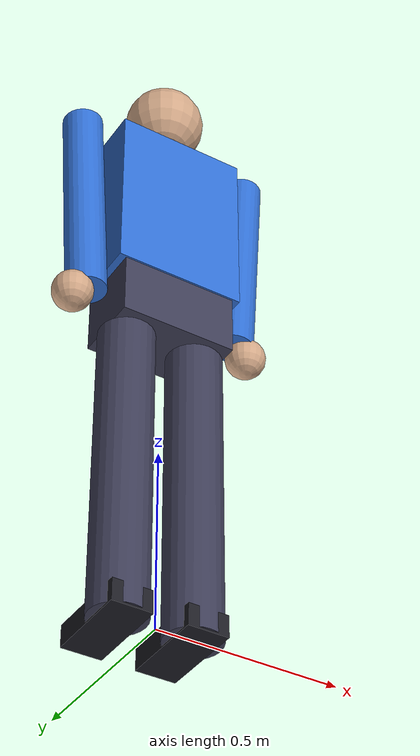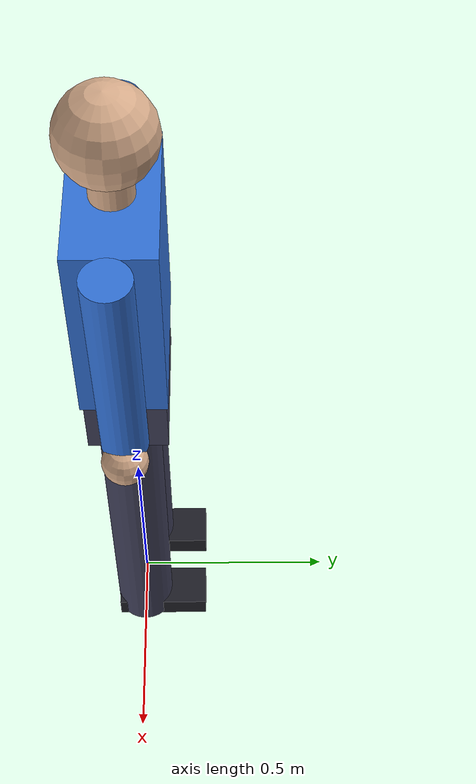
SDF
<?xml version="1.0"?>
<sdf version="1.9">
  <model name="human_figure">
    <static>true</static>
    <link name="body">
      <pose>0 0 0.875 0 0 0</pose>

      <inertial>
        <mass>70.0</mass>
        <inertia>
          <ixx>18.0</ixx><ixy>0</ixy><ixz>0</ixz>
          <iyy>18.0</iyy><iyz>0</iyz>
          <izz>2.2</izz>
        </inertia>
      </inertial>

      <!-- Коллизия: тот же цилиндр, что и раньше.
           Датчики видят простую форму, алгоритмы не меняются. -->

      <!-- Визуальное представление: силуэт человека из примитивов -->

      <visual name="head">
        <pose>0 0 0.79 0 0 0</pose>
        <geometry>
          <sphere><radius>0.11</radius></sphere>
        </geometry>
        <material>
          <ambient>0.85 0.68 0.55 1</ambient>
          <diffuse>0.85 0.68 0.55 1</diffuse>
        </material>
      </visual>

      <visual name="neck">
        <pose>0 0 0.66 0 0 0</pose>
        <geometry>
          <cylinder><radius>0.05</radius><length>0.09</length></cylinder>
        </geometry>
        <material>
          <ambient>0.85 0.68 0.55 1</ambient>
          <diffuse>0.85 0.68 0.55 1</diffuse>
        </material>
      </visual>

      <visual name="torso">
        <pose>0 0 0.38 0 0 0</pose>
        <geometry>
          <box><size>0.36 0.20 0.50</size></box>
        </geometry>
        <material>
          <ambient>0.15 0.35 0.70 1</ambient>
          <diffuse>0.20 0.45 0.85 1</diffuse>
        </material>
      </visual>

      <visual name="hips">
        <pose>0 0 0.06 0 0 0</pose>
        <geometry>
          <box><size>0.32 0.19 0.20</size></box>
        </geometry>
        <material>
          <ambient>0.20 0.20 0.28 1</ambient>
          <diffuse>0.25 0.25 0.35 1</diffuse>
        </material>
      </visual>

      <visual name="arm_left">
        <pose>0.24 0 0.36 0 0.06 0</pose>
        <geometry>
          <cylinder><radius>0.055</radius><length>0.60</length></cylinder>
        </geometry>
        <material>
          <ambient>0.15 0.35 0.70 1</ambient>
          <diffuse>0.20 0.45 0.85 1</diffuse>
        </material>
      </visual>

      <visual name="arm_right">
        <pose>-0.24 0 0.36 0 -0.06 0</pose>
        <geometry>
          <cylinder><radius>0.055</radius><length>0.60</length></cylinder>
        </geometry>
        <material>
          <ambient>0.15 0.35 0.70 1</ambient>
          <diffuse>0.20 0.45 0.85 1</diffuse>
        </material>
      </visual>

      <visual name="hand_left">
        <pose>0.26 0 0.04 0 0 0</pose>
        <geometry>
          <sphere><radius>0.055</radius></sphere>
        </geometry>
        <material>
          <ambient>0.85 0.68 0.55 1</ambient>
          <diffuse>0.85 0.68 0.55 1</diffuse>
        </material>
      </visual>

      <visual name="hand_right">
        <pose>-0.26 0 0.04 0 0 0</pose>
        <geometry>
          <sphere><radius>0.055</radius></sphere>
        </geometry>
        <material>
          <ambient>0.85 0.68 0.55 1</ambient>
          <diffuse>0.85 0.68 0.55 1</diffuse>
        </material>
      </visual>

      <visual name="leg_left">
        <pose>0.10 0 -0.46 0 0 0</pose>
        <geometry>
          <cylinder><radius>0.075</radius><length>0.84</length></cylinder>
        </geometry>
        <material>
          <ambient>0.20 0.20 0.28 1</ambient>
          <diffuse>0.25 0.25 0.35 1</diffuse>
        </material>
      </visual>

      <visual name="leg_right">
        <pose>-0.10 0 -0.46 0 0 0</pose>
        <geometry>
          <cylinder><radius>0.075</radius><length>0.84</length></cylinder>
        </geometry>
        <material>
          <ambient>0.20 0.20 0.28 1</ambient>
          <diffuse>0.25 0.25 0.35 1</diffuse>
        </material>
      </visual>

      <visual name="foot_left">
        <pose>0.10 0.05 -0.855 0 0 0</pose>
        <geometry>
          <box><size>0.11 0.24 0.06</size></box>
        </geometry>
        <material>
          <ambient>0.10 0.10 0.12 1</ambient>
          <diffuse>0.12 0.12 0.15 1</diffuse>
        </material>
      </visual>

      <visual name="foot_right">
        <pose>-0.10 0.05 -0.855 0 0 0</pose>
        <geometry>
          <box><size>0.11 0.24 0.06</size></box>
        </geometry>
        <material>
          <ambient>0.10 0.10 0.12 1</ambient>
          <diffuse>0.12 0.12 0.15 1</diffuse>
        </material>
      </visual>

    </link>
  </model>
</sdf>
